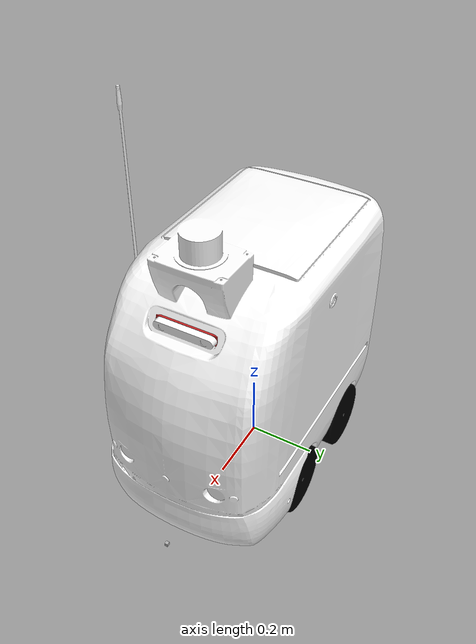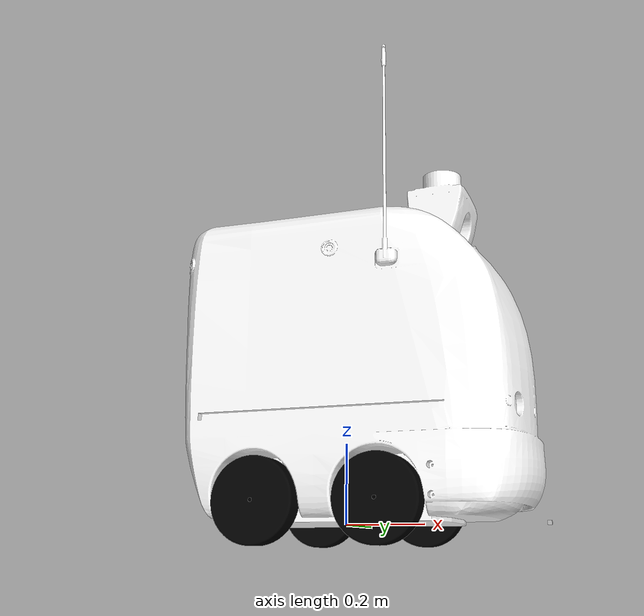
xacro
<?xml version="1.0" encoding="utf-8"?>
<robot
  name="tars4">
  <link
    name="base_link">
    <inertial>
      <origin
        xyz="0 0 0"
        rpy="0 0 0" />
      <mass
        value="50" />
      <inertia
        ixx="1.2118547835405"
        ixy="0.000301913650025786"
        ixz="0.244146054455403"
        iyy="2.63217845117372"
        iyz="-0.00186525892761391"
        izz="2.69232933962158" />
    </inertial>
    <visual>
      <origin
        xyz="0 0 0"
        rpy="0 0 0" />
      <geometry>
        <mesh
          filename="package://tars4/meshes/base_link.STL" />
      </geometry>
      <material
        name="white">
        <color
          rgba="1 1 1 1" />
      </material>
    </visual>
    <collision>
      <origin
        xyz="0 0 0"
        rpy="0 0 0" />
      <geometry>
        <mesh
          filename="package://tars4/meshes/base_link.STL" />
      </geometry>
    </collision>
  </link>
  <link
    name="frontleftwheel">
    <inertial>
      <origin
        xyz="-2.7756E-17 -0.0275 -8.3267E-17"
        rpy="0 0 0" />
      <mass
        value="1.8042" />
      <inertia
        ixx="0.0051847"
        ixy="6.6094E-20"
        ixz="-1.7149E-19"
        iyy="0.0094659"
        iyz="-1.8286E-18"
        izz="0.0051847" />
    </inertial>
    <visual>
      <origin
        xyz="0 0 0"
        rpy="0 0 0" />
      <geometry>
        <mesh
          filename="package://tars4/meshes/frontleftwheel.STL" />
      </geometry>
      <material
        name="">
        <color
          rgba="0 0 0 1" />
      </material>
    </visual>
    <collision>
      <origin
        xyz="0 0 0"
        rpy="0 0 0" />
      <geometry>
        <mesh
          filename="package://tars4/meshes/frontleftwheel.STL" />
      </geometry>
    </collision>
  </link>
  <gazebo reference="frontleftwheel">
    <material>Gazebo/Grey</material>
  </gazebo>

  <joint
    name="frontleftjoint"
    type="continuous">
    <origin
      xyz="0.14985 0.2475 0.05"
      rpy="0 0 0" />
    <parent
      link="base_link" />
    <child
      link="frontleftwheel" />
    <axis
      xyz="0 1 0" />
    <limit
      effort="1"
      velocity="1.5" />
  </joint>
  <link
    name="backleftwheel">
    <inertial>
      <origin
        xyz="-9.7145E-17 -0.0275 1.3878E-16"
        rpy="0 0 0" />
      <mass
        value="1.8042" />
      <inertia
        ixx="0.0051847"
        ixy="4.9875E-19"
        ixz="5.9653E-19"
        iyy="0.0094659"
        iyz="-3.044E-18"
        izz="0.0051847" />
    </inertial>
    <visual>
      <origin
        xyz="0 0 0"
        rpy="0 0 0" />
      <geometry>
        <mesh
          filename="package://tars4/meshes/backleftwheel.STL" />
      </geometry>
      <material
        name="">
        <color
          rgba="0 0 0 1" />
      </material>
    </visual>
    <collision>
      <origin
        xyz="0 0 0"
        rpy="0 0 0" />
      <geometry>
        <mesh
          filename="package://tars4/meshes/backleftwheel.STL" />
      </geometry>
    </collision>
  </link>

  <gazebo reference="backleftwheel">
    <material>Gazebo/Grey</material>
  </gazebo>
  <joint
    name="backleftjoint"
    type="continuous">
    <origin
      xyz="-0.15015 0.2475 0.05"
      rpy="0 0 0" />
    <parent
      link="base_link" />
    <child
      link="backleftwheel" />
    <axis
      xyz="0 1 0" />
    <limit
      effort="1"
      velocity="1.5" />
  </joint>
  <link
    name="frontrightwheel">
    <inertial>
      <origin
        xyz="0 0.0275 8.3267E-17"
        rpy="0 0 0" />
      <mass
        value="1.8042" />
      <inertia
        ixx="0.0051847"
        ixy="-1.216E-20"
        ixz="-6.3548E-19"
        iyy="0.0094659"
        iyz="3.4218E-18"
        izz="0.0051847" />
    </inertial>
    <visual>
      <origin
        xyz="0 0 0"
        rpy="0 0 0" />
      <geometry>
        <mesh
          filename="package://tars4/meshes/frontrightwheel.STL" />
      </geometry>
      <material
        name="">
        <color
          rgba="0 0 0 1" />
      </material>
    </visual>
    <collision>
      <origin
        xyz="0 0 0"
        rpy="0 0 0" />
      <geometry>
        <mesh
          filename="package://tars4/meshes/frontrightwheel.STL" />
      </geometry>
    </collision>
  </link>
  <gazebo reference="frontrightwheel">
    <material>Gazebo/Grey</material>
  </gazebo>
  <joint
    name="frontrightjoint"
    type="continuous">
    <origin
      xyz="0.14985 -0.2475 0.05"
      rpy="0 0 0" />
    <parent
      link="base_link" />
    <child
      link="frontrightwheel" />
    <axis
      xyz="0 1 0" />
    <limit
      effort="1"
      velocity="1.5" />
  </joint>
  <link
    name="backrightwheel">
    <inertial>
      <origin
        xyz="-9.7145E-17 0.0275 -1.3878E-16"
        rpy="0 0 0" />
      <mass
        value="1.8042" />
      <inertia
        ixx="0.0051847"
        ixy="9.3321E-20"
        ixz="2.4737E-19"
        iyy="0.0094659"
        iyz="3.0839E-18"
        izz="0.0051847" />
    </inertial>
    <visual>
      <origin
        xyz="0 0 0"
        rpy="0 0 0" />
      <geometry>
        <mesh
          filename="package://tars4/meshes/backrightwheel.STL" />
      </geometry>
      <material
        name="">
        <color
          rgba="0 0 0 1" />
      </material>
    </visual>
    <collision>
      <origin
        xyz="0 0 0"
        rpy="0 0 0" />
      <geometry>
        <mesh
          filename="package://tars4/meshes/backrightwheel.STL" />
      </geometry>
    </collision>
  </link>

<gazebo reference="backrightwheel">
    <material>Gazebo/Grey</material>
  </gazebo>

  <joint
    name="backrightjoint"
    type="continuous">
    <origin
      xyz="-0.15015 -0.2475 0.05"
      rpy="0 0 0" />
    <parent
      link="base_link" />
    <child
      link="backrightwheel" />
    <axis
      xyz="0 1 0" />
    <limit
      effort="1"
      velocity="1.5" />
  </joint>
 <!-- Depth camera plugin ..................................................................................-->
  <joint name="depth_camera_joint" type="fixed">
        <parent link="base_link"/>
        <child link="depth_camera_link"/>
        <origin xyz="0.32636 0 0.65905" rpy="0 0 0"/>
    </joint>

    <link name="depth_camera_link">
        <visual>
            <geometry>
                <box size="0.033 0.175 0.03"/>
                <material
                name="">
                <color
                rgba="0 0 0 1" />
               </material>
            </geometry>
        </visual>
    </link>

    <joint name="depth_camera_optical_joint" type="fixed">
        <parent link="depth_camera_link"/>
        <child link="depth_camera_link_optical"/>
        <origin xyz="0 0 0" rpy="-1.57079632679 0 -1.57079632679"/>
    </joint>

    <link name="depth_camera_link_optical"></link>

    <gazebo reference="depth_camera_link">
        <material>Gazebo/Red</material>

        <sensor name="camera" type="depth">
            <pose> 0 0 0 0 -1.57079632679 0 </pose>
            <visualize>true</visualize>
            <update_rate>30</update_rate>
            <camera>
                <horizontal_fov>1.57079632679</horizontal_fov>
                <image>
                    <format>R8G8B8</format>
                    <width>1920</width>
                    <height>1080</height>
                </image>
                <clip>
                    <near>0.5</near>
                    <far>25.0</far>
                </clip>
            </camera>
            <plugin name="camera_controller" filename="libDepthCameraPlugin.so">
            <CxPrime>0</CxPrime>
            <updateRate>30.0</updateRate>
            <cameraName>depth_cam1</cameraName>
            <frameName>depth_camera_link_optical</frameName>
            <hackBaseline>0.012</hackBaseline>
            <distortionK1>1.0</distortionK1>
            <distortionK2>1.0</distortionK2>
            <distortionK3>1.0</distortionK3>
            <distortionT1>1.0</distortionT1>
            <distortionT2>1.0</distortionT2>
          </plugin>
          <plugin name="kinect" filename="libgazebo_ros_openni_kinect.so">
              <CxPrime>0</CxPrime>
              <updateRate>30.0</updateRate>
              <imageTopicName>image_raw</imageTopicName>
              <pointCloudTopicName>points</pointCloudTopicName>
              <depthImageTopicName>image_depth</depthImageTopicName>
              <depthImageCameraInfoTopicName>depth_camera_info</depthImageCameraInfoTopicName>
              <pointCloudCutoff>0.001</pointCloudCutoff>
              <cameraName>kinect</cameraName>
              <frameName>depth_camera_link_optical</frameName>
              <distortionK1>0.00000001</distortionK1>
              <distortionK2>0.00000001</distortionK2>
              <distortionK3>0.00000001</distortionK3>
              <distortionT1>0.00000001</distortionT1>
              <distortionT2>0.00000001</distortionT2>
            </plugin>
        </sensor>
    </gazebo>

 <!--Skid Steer Plugin ..............................................-->

 <gazebo>
  <plugin name="skid_steer_drive_controller" filename="libgazebo_ros_skid_steer_drive.so">
    <updateRate>100.0</updateRate>
    <robotNamespace>/</robotNamespace>
    <leftFrontJoint>frontleftjoint</leftFrontJoint>
    <rightFrontJoint>frontrightjoint</rightFrontJoint>
    <leftRearJoint>backleftjoint</leftRearJoint>
    <rightRearJoint>backrightjoint</rightRearJoint>
    <wheelSeparation>0.495</wheelSeparation>
    <wheelDiameter>0.205</wheelDiameter>
    <robotBaseFrame>base_link</robotBaseFrame>
    <torque>20</torque>
    <commandTopic>cmd_vel</commandTopic>
    <odometryTopic>odom</odometryTopic>
    <odometryFrame>odom</odometryFrame>
    <broadcastTF>true</broadcastTF>
    <covariance_x>0.001</covariance_x>
    <covariance_y>0.001</covariance_y>
    <covariance_yaw>0.01</covariance_yaw>
  </plugin>
</gazebo>

<!--IR/SONAR Plugin ..............................................-->

<joint name="ir_front_joint" type="fixed">
    <axis xyz="0 1 0" />
    <origin rpy="0 0 0" xyz="0.5 0 0" />
    <parent link="base_link"/>
    <child link="base_ir_front"/>
</joint>
<link name="base_ir_front">
    <collision>
      <origin xyz="0 0 0" rpy="0 0 0"/>
      <geometry>
        <box size="0.01 0.01 0.01"/>
      </geometry>
    </collision>
    <visual>
      <origin xyz="0 0 0" rpy="0 0 0"/>
      <geometry>
        <box size="0.01 0.01 0.01"/>
      </geometry>
    </visual>
    <inertial>
      <mass value="1e-5" />
      <origin xyz="0 0 0" rpy="0 0 0"/>
      <inertia ixx="1e-6" ixy="0" ixz="0" iyy="1e-6" iyz="0"      izz="1e-6" />
    </inertial>
</link>

 <gazebo reference="base_ir_front">
   <sensor type="ray" name="TeraRanger">
      <pose>0 0 0 0 0 0</pose>
      <visualize>true</visualize>
      <update_rate>50</update_rate>
      <ray>
         <scan>
            <horizontal>
               <samples>10</samples>
               <resolution>1</resolution>
               <min_angle>-0.654498</min_angle>
               <max_angle>0.654498</max_angle>
            </horizontal>
            <vertical>
               <samples>10</samples>
               <resolution>1</resolution>
               <min_angle>-0.654498</min_angle>
               <max_angle>0.654498</max_angle>
            </vertical>
         </scan>
         <range>
            <min>0.2</min>
            <max>8</max>
            <resolution>0.02</resolution>
         </range>
      </ray>
      <plugin filename="libgazebo_ros_range.so" name="gazebo_ros_range">
         <gaussianNoise>0.005</gaussianNoise>
         <alwaysOn>true</alwaysOn>
         <updateRate>50</updateRate>
         <topicName>sensor/ir_front</topicName>
         <frameName>base_ir_front</frameName>
         <radiation>INFRARED</radiation>
         <fov>1.309</fov>
      </plugin>
   </sensor>
   </gazebo>

</robot>
